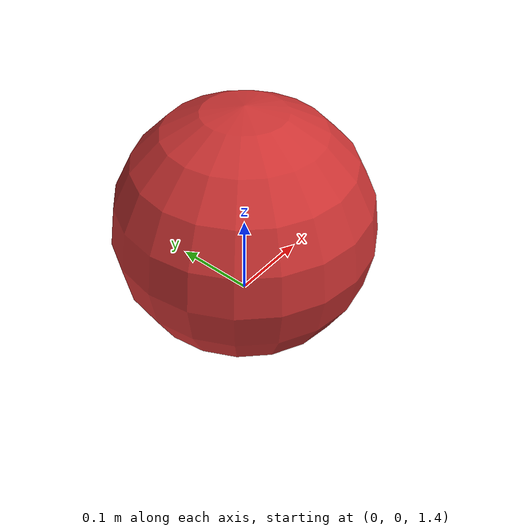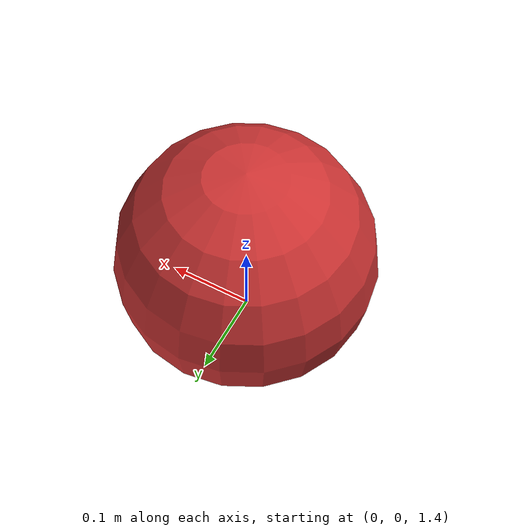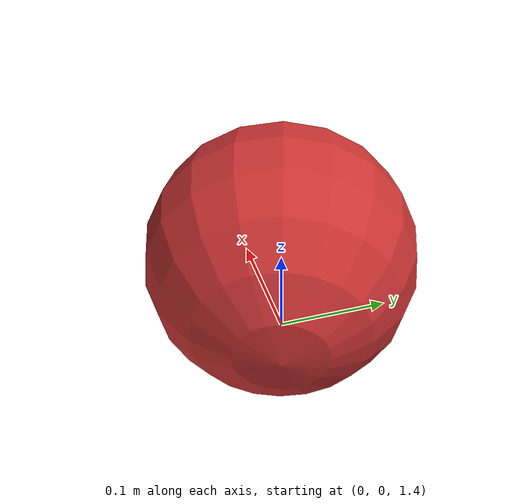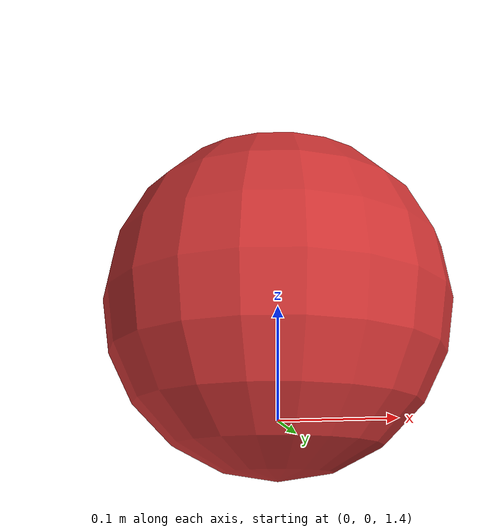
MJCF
<mujoco model="basic_scene">

    <option gravity="0 0 -9.81" timestep="0.002" />

    <asset>
        <texture type="skybox" builtin="gradient" rgb1="0.3 0.5 0.7" rgb2="0 0 0" width="512" height="512"/>
        <texture name="grid" type="2d" builtin="checker" rgb1=".1 .2 .3" rgb2=".2 .3 .4" width="300" height="300" mark="edge" markrgb=".2 .3 .4"/>
        <material name="grid_floor" texture="grid" texrepeat="1 1" texuniform="true"/>
    </asset>

    <worldbody>
        <light pos="0 0 4" dir="0 0 -1" castshadow="true"/>

        <geom name="floor" type="plane" size="0 0 .25" material="grid_floor"/>

        <body name="ball" pos="0 0 1.5">
            <freejoint name="ball_joint"/>
            <geom type="sphere" size="0.15" rgba="0.8 0.2 0.2 1" mass="0.5" friction="1 0.005 0.0001"/>
        </body>
    </worldbody>

</mujoco>
